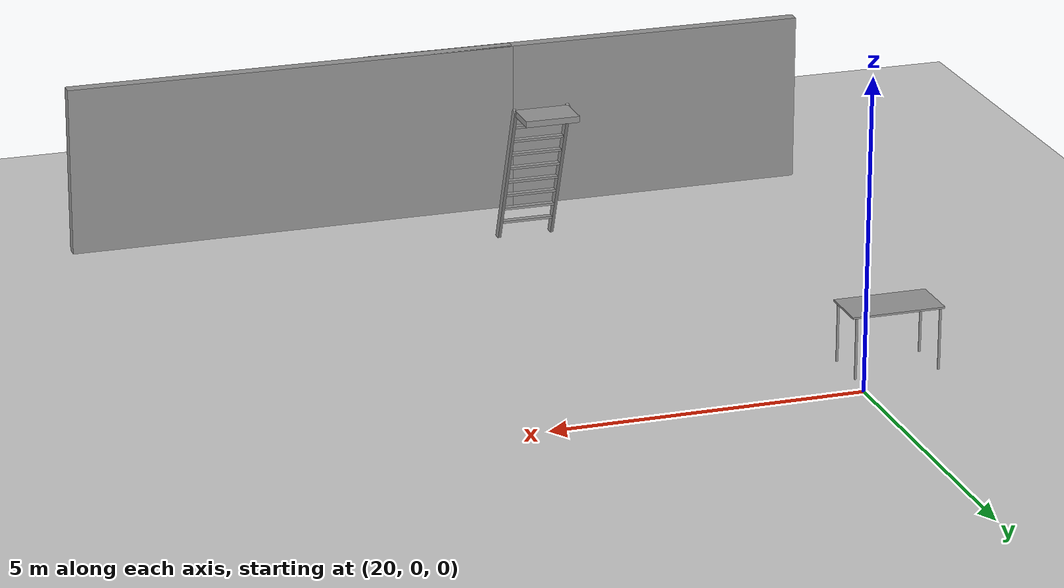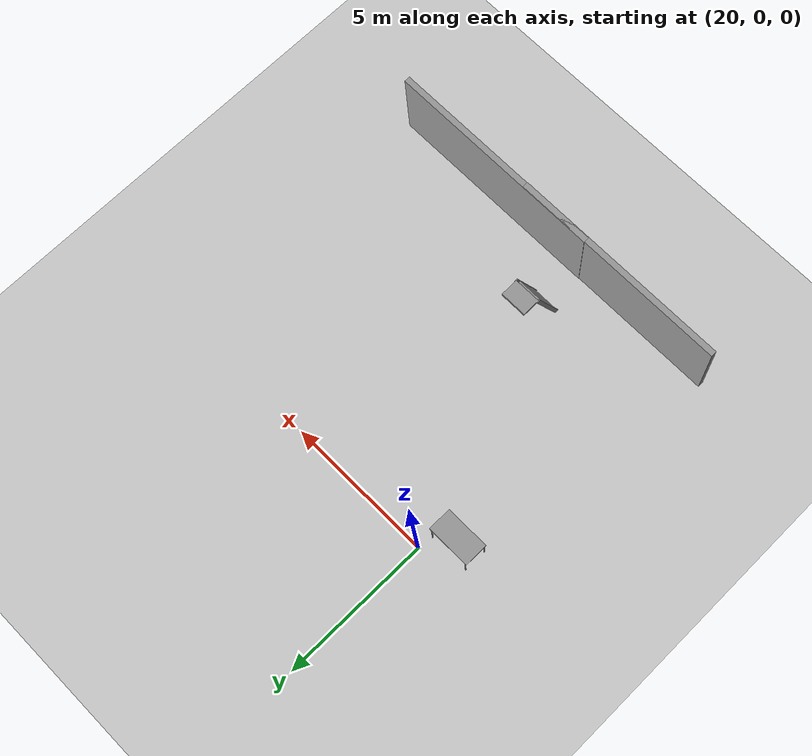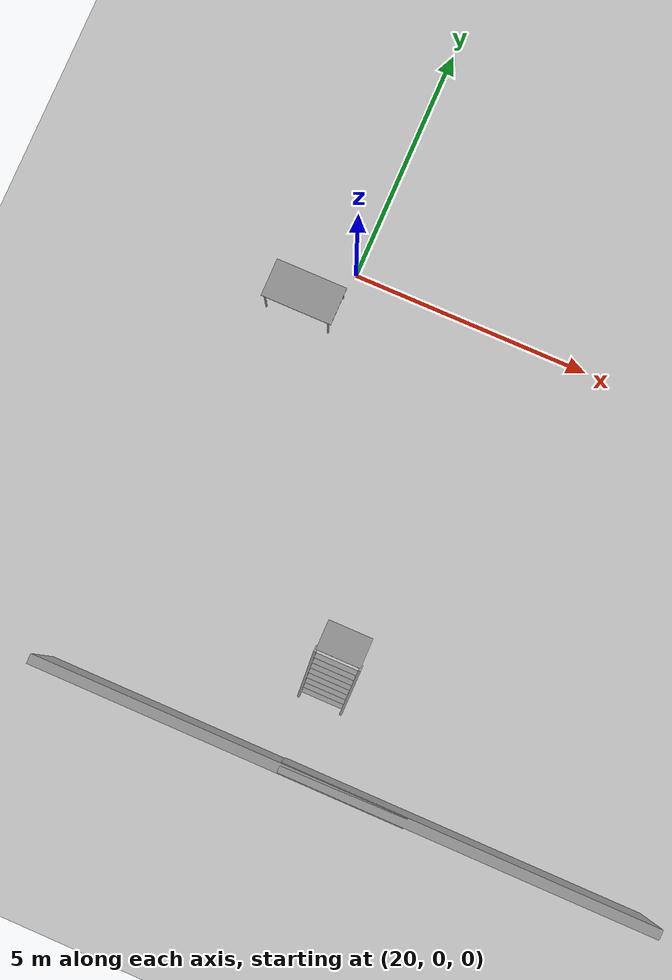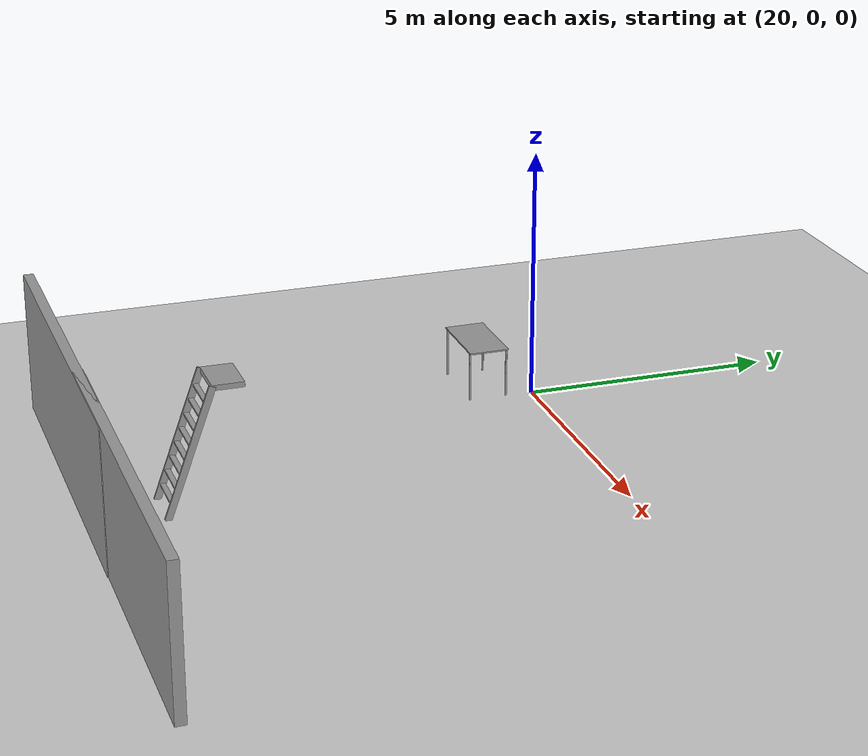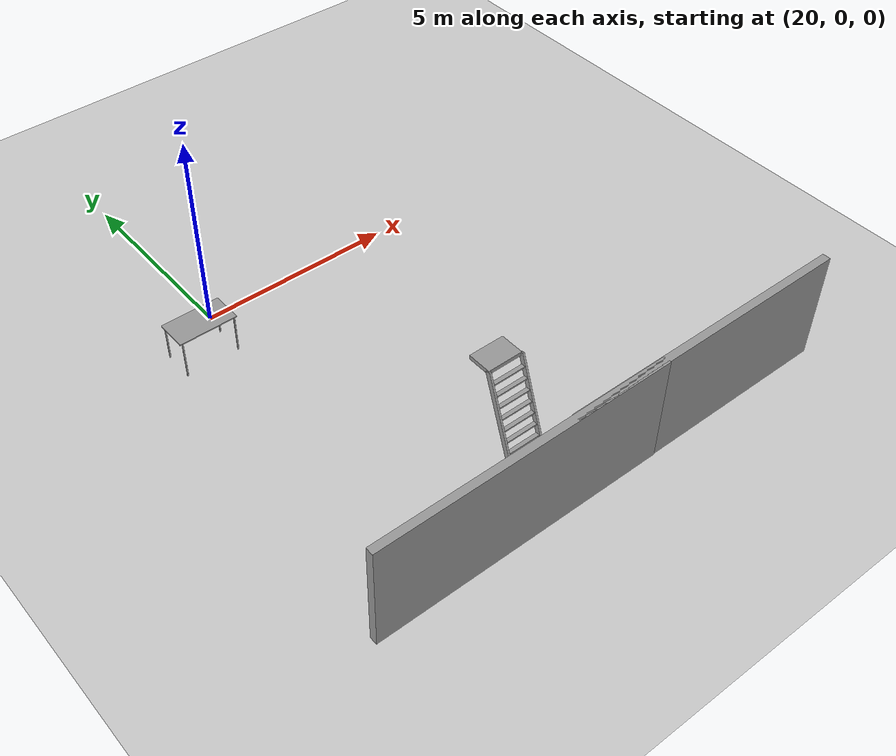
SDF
<sdf version="1.9">
 <world name="factory">
  <model name="ladder_70deg_0rails">
   <static>true</static>
   <link name="step0">
    <pose>0 0.097059 0.266667 0 -0 0</pose>
    <inertial>
     <mass>9.75482</mass>
     <inertia>
      <ixx>0.00957124</ixx>
      <iyy>0.65963</iyy>
      <izz>0.666842</izz>
      <ixy>0</ixy>
      <ixz>0</ixz>
      <iyz>0</iyz>
     </inertia>
    </inertial>
    <collision name="collision"><geometry><box><size>0.9 0.1016 0.0381</size></box></geometry></collision>
    <visual name="visual">
     <geometry><box><size>0.9 0.1016 0.0381</size></box></geometry>
     <material>
      <ambient>0.5 0.5 0.5 1</ambient>
      <diffuse>0.6 0.6 0.6 1</diffuse>
      <specular>0.2 0.2 0.2 1</specular>
     </material>
    </visual>
   </link>
   <link name="step1">
    <pose>0 0.194117 0.533333 0 -0 0</pose>
    <inertial>
     <mass>9.75482</mass>
     <inertia>
      <ixx>0.00957124</ixx>
      <iyy>0.65963</iyy>
      <izz>0.666842</izz>
      <ixy>0</ixy>
      <ixz>0</ixz>
      <iyz>0</iyz>
     </inertia>
    </inertial>
    <collision name="collision"><geometry><box><size>0.9 0.1016 0.0381</size></box></geometry></collision>
    <visual name="visual">
     <geometry><box><size>0.9 0.1016 0.0381</size></box></geometry>
     <material>
      <ambient>0.5 0.5 0.5 1</ambient>
      <diffuse>0.6 0.6 0.6 1</diffuse>
      <specular>0.2 0.2 0.2 1</specular>
     </material>
    </visual>
   </link>
   <link name="step2">
    <pose>0 0.291176 0.8 0 -0 0</pose>
    <inertial>
     <mass>9.75482</mass>
     <inertia>
      <ixx>0.00957124</ixx>
      <iyy>0.65963</iyy>
      <izz>0.666842</izz>
      <ixy>0</ixy>
      <ixz>0</ixz>
      <iyz>0</iyz>
     </inertia>
    </inertial>
    <collision name="collision"><geometry><box><size>0.9 0.1016 0.0381</size></box></geometry></collision>
    <visual name="visual">
     <geometry><box><size>0.9 0.1016 0.0381</size></box></geometry>
     <material>
      <ambient>0.5 0.5 0.5 1</ambient>
      <diffuse>0.6 0.6 0.6 1</diffuse>
      <specular>0.2 0.2 0.2 1</specular>
     </material>
    </visual>
   </link>
   <link name="step3">
    <pose>0 0.388235 1.06667 0 -0 0</pose>
    <inertial>
     <mass>9.75482</mass>
     <inertia>
      <ixx>0.00957124</ixx>
      <iyy>0.65963</iyy>
      <izz>0.666842</izz>
      <ixy>0</ixy>
      <ixz>0</ixz>
      <iyz>0</iyz>
     </inertia>
    </inertial>
    <collision name="collision"><geometry><box><size>0.9 0.1016 0.0381</size></box></geometry></collision>
    <visual name="visual">
     <geometry><box><size>0.9 0.1016 0.0381</size></box></geometry>
     <material>
      <ambient>0.5 0.5 0.5 1</ambient>
      <diffuse>0.6 0.6 0.6 1</diffuse>
      <specular>0.2 0.2 0.2 1</specular>
     </material>
    </visual>
   </link>
   <link name="step4">
    <pose>0 0.485294 1.33333 0 -0 0</pose>
    <inertial>
     <mass>9.75482</mass>
     <inertia>
      <ixx>0.00957124</ixx>
      <iyy>0.65963</iyy>
      <izz>0.666842</izz>
      <ixy>0</ixy>
      <ixz>0</ixz>
      <iyz>0</iyz>
     </inertia>
    </inertial>
    <collision name="collision"><geometry><box><size>0.9 0.1016 0.0381</size></box></geometry></collision>
    <visual name="visual">
     <geometry><box><size>0.9 0.1016 0.0381</size></box></geometry>
     <material>
      <ambient>0.5 0.5 0.5 1</ambient>
      <diffuse>0.6 0.6 0.6 1</diffuse>
      <specular>0.2 0.2 0.2 1</specular>
     </material>
    </visual>
   </link>
   <link name="step5">
    <pose>0 0.582352 1.6 0 -0 0</pose>
    <inertial>
     <mass>9.75482</mass>
     <inertia>
      <ixx>0.00957124</ixx>
      <iyy>0.65963</iyy>
      <izz>0.666842</izz>
      <ixy>0</ixy>
      <ixz>0</ixz>
      <iyz>0</iyz>
     </inertia>
    </inertial>
    <collision name="collision"><geometry><box><size>0.9 0.1016 0.0381</size></box></geometry></collision>
    <visual name="visual">
     <geometry><box><size>0.9 0.1016 0.0381</size></box></geometry>
     <material>
      <ambient>0.5 0.5 0.5 1</ambient>
      <diffuse>0.6 0.6 0.6 1</diffuse>
      <specular>0.2 0.2 0.2 1</specular>
     </material>
    </visual>
   </link>
   <link name="step6">
    <pose>0 0.679411 1.86667 0 -0 0</pose>
    <inertial>
     <mass>9.75482</mass>
     <inertia>
      <ixx>0.00957124</ixx>
      <iyy>0.65963</iyy>
      <izz>0.666842</izz>
      <ixy>0</ixy>
      <ixz>0</ixz>
      <iyz>0</iyz>
     </inertia>
    </inertial>
    <collision name="collision"><geometry><box><size>0.9 0.1016 0.0381</size></box></geometry></collision>
    <visual name="visual">
     <geometry><box><size>0.9 0.1016 0.0381</size></box></geometry>
     <material>
      <ambient>0.5 0.5 0.5 1</ambient>
      <diffuse>0.6 0.6 0.6 1</diffuse>
      <specular>0.2 0.2 0.2 1</specular>
     </material>
    </visual>
   </link>
   <link name="step7">
    <pose>0 0.77647 2.13333 0 -0 0</pose>
    <inertial>
     <mass>9.75482</mass>
     <inertia>
      <ixx>0.00957124</ixx>
      <iyy>0.65963</iyy>
      <izz>0.666842</izz>
      <ixy>0</ixy>
      <ixz>0</ixz>
      <iyz>0</iyz>
     </inertia>
    </inertial>
    <collision name="collision"><geometry><box><size>0.9 0.1016 0.0381</size></box></geometry></collision>
    <visual name="visual">
     <geometry><box><size>0.9 0.1016 0.0381</size></box></geometry>
     <material>
      <ambient>0.5 0.5 0.5 1</ambient>
      <diffuse>0.6 0.6 0.6 1</diffuse>
      <specular>0.2 0.2 0.2 1</specular>
     </material>
    </visual>
   </link>
   <link name="landing">
    <pose>0 1.17353 2.4 0 -0 0</pose>
    <inertial>
     <mass>57.6072</mass>
     <inertia><ixx>1.73518</ixx><iyy>3.89545</iyy><izz>5.6167</izz><ixy>0</ixy><ixz>0</ixz><iyz>0</iyz></inertia>
    </inertial>
    <collision name="collision"><geometry><box><size>0.9 0.6 0.1016</size></box></geometry></collision>
    <visual name="visual">
     <geometry><box><size>0.9 0.6 0.1016</size></box></geometry>
     <material>
      <ambient>0.5 0.5 0.5 1</ambient>
      <diffuse>0.6 0.6 0.6 1</diffuse>
      <specular>0.2 0.2 0.2 1</specular>
     </material>
    </visual>
   </link>
   <link name="left_side_wall">
    <pose>-0.45 0.436764 1.2 1.22173 -0 0</pose>
    <collision name="collision"><geometry><box><size>0.0508 2.63403 0.13</size></box></geometry></collision>
    <visual name="visual">
     <geometry><box><size>0.0508 2.63403 0.13</size></box></geometry>
     <material>
      <ambient>0.5 0.5 0.5 1</ambient>
      <diffuse>0.6 0.6 0.6 1</diffuse>
      <specular>0.2 0.2 0.2 1</specular>
     </material>
    </visual>
   </link>
   <link name="right_side_wall">
    <pose>0.45 0.436764 1.2 1.22173 -0 0</pose>
    <collision name="collision"><geometry><box><size>0.0508 2.63403 0.13</size></box></geometry></collision>
    <visual name="visual">
     <geometry><box><size>0.0508 2.63403 0.13</size></box></geometry>
     <material>
      <ambient>0.5 0.5 0.5 1</ambient>
      <diffuse>0.6 0.6 0.6 1</diffuse>
      <specular>0.2 0.2 0.2 1</specular>
     </material>
    </visual>
   </link>
   <pose>22.7475 -8.13571 0 0 -0 0</pose>
  </model>
  <model name="grey_wall_clone_1">
   <static>true</static>
   <link name="link">
    <pose>0 0 1.4 0 -0 0</pose>
    <collision name="collision"><geometry><box><size>7.5 0.2 2.8</size></box></geometry></collision>
    <visual name="visual">
     <cast_shadows>0</cast_shadows>
     <geometry><box><size>7.5 0.2 2.8</size></box></geometry>
     <material>
      <ambient>0.5 0.5 0.5 1</ambient>
      <diffuse>0.6 0.6 0.6 1</diffuse>
      <specular>0.2 0.2 0.2 1</specular>
     </material>
    </visual>
   </link>
   <pose>21.3028 -9.50574 0 0 -0 0</pose>
  </model>
  <model name="grey_wall_clone_2">
   <static>true</static>
   <link name="link">
    <pose>0 0 1.4 0 -0 0</pose>
    <collision name="collision"><geometry><box><size>7.5 0.2 2.8</size></box></geometry></collision>
    <visual name="visual">
     <cast_shadows>0</cast_shadows>
     <geometry><box><size>7.5 0.2 2.8</size></box></geometry>
     <material>
      <ambient>0.5 0.5 0.5 1</ambient>
      <diffuse>0.6 0.6 0.6 1</diffuse>
      <specular>0.2 0.2 0.2 1</specular>
     </material>
    </visual>
   </link>
   <pose>26.2939 -9.49059 0 0 -0 0</pose>
  </model>
  <model name="table">
   <static>true</static>
   <link name="link">
    <collision name="surface">
     <pose>0 0 1 0 -0 0</pose>
     <geometry><box><size>1.5 0.8 0.03</size></box></geometry>
     <surface><friction><ode><mu>0.6</mu><mu2>0.6</mu2></ode></friction></surface>
    </collision>
    <visual name="visual1">
     <pose>0 0 1 0 -0 0</pose>
     <geometry><box><size>1.5 0.8 0.03</size></box></geometry>
     <material>
      <ambient>0.5 0.5 0.5 1</ambient>
      <diffuse>0.6 0.6 0.6 1</diffuse>
      <specular>0.2 0.2 0.2 1</specular>
     </material>
    </visual>
    <collision name="front_left_leg">
     <pose>0.68 0.38 0.5 0 -0 0</pose>
     <geometry><cylinder><radius>0.02</radius><length>1</length></cylinder></geometry>
    </collision>
    <visual name="front_left_leg">
     <pose>0.68 0.38 0.5 0 -0 0</pose>
     <geometry><cylinder><radius>0.02</radius><length>1</length></cylinder></geometry>
     <material>
      <ambient>0.5 0.5 0.5 1</ambient>
      <diffuse>0.6 0.6 0.6 1</diffuse>
      <specular>0.2 0.2 0.2 1</specular>
     </material>
    </visual>
    <collision name="front_right_leg">
     <pose>0.68 -0.38 0.5 0 -0 0</pose>
     <geometry><cylinder><radius>0.02</radius><length>1</length></cylinder></geometry>
    </collision>
    <visual name="front_right_leg">
     <pose>0.68 -0.38 0.5 0 -0 0</pose>
     <geometry><cylinder><radius>0.02</radius><length>1</length></cylinder></geometry>
     <material>
      <ambient>0.5 0.5 0.5 1</ambient>
      <diffuse>0.6 0.6 0.6 1</diffuse>
      <specular>0.2 0.2 0.2 1</specular>
     </material>
    </visual>
    <collision name="back_right_leg">
     <pose>-0.68 -0.38 0.5 0 -0 0</pose>
     <geometry><cylinder><radius>0.02</radius><length>1</length></cylinder></geometry>
    </collision>
    <visual name="back_right_leg">
     <pose>-0.68 -0.38 0.5 0 -0 0</pose>
     <geometry><cylinder><radius>0.02</radius><length>1</length></cylinder></geometry>
     <material>
      <ambient>0.5 0.5 0.5 1</ambient>
      <diffuse>0.6 0.6 0.6 1</diffuse>
      <specular>0.2 0.2 0.2 1</specular>
     </material>
    </visual>
    <collision name="back_left_leg">
     <pose>-0.68 0.38 0.5 0 -0 0</pose>
     <geometry><cylinder><radius>0.02</radius><length>1</length></cylinder></geometry>
    </collision>
    <visual name="back_left_leg">
     <pose>-0.68 0.38 0.5 0 -0 0</pose>
     <geometry><cylinder><radius>0.02</radius><length>1</length></cylinder></geometry>
     <material>
      <ambient>0.5 0.5 0.5 1</ambient>
      <diffuse>0.6 0.6 0.6 1</diffuse>
      <specular>0.2 0.2 0.2 1</specular>
     </material>
    </visual>
   </link>
   <pose>19.256 -0.907717 0 0 -0 0</pose>
  </model>
  <model name="ground">
   <static>true</static>
   <pose>0 0 -0.01 0 0 0</pose>
   <link name="link">
    <collision name="collision">
     <geometry><plane><normal>0 0 1</normal><size>100 100</size></plane></geometry>
    </collision>
    <visual name="visual">
     <geometry><plane><normal>0 0 1</normal><size>100 100</size></plane></geometry>
     <material><ambient>0.8 0.8 0.8 1</ambient><diffuse>0.8 0.8 0.8 1</diffuse></material>
    </visual>
   </link>
  </model>
 </world>
</sdf>
